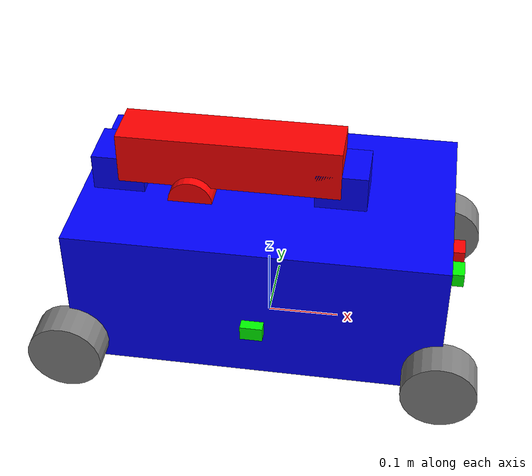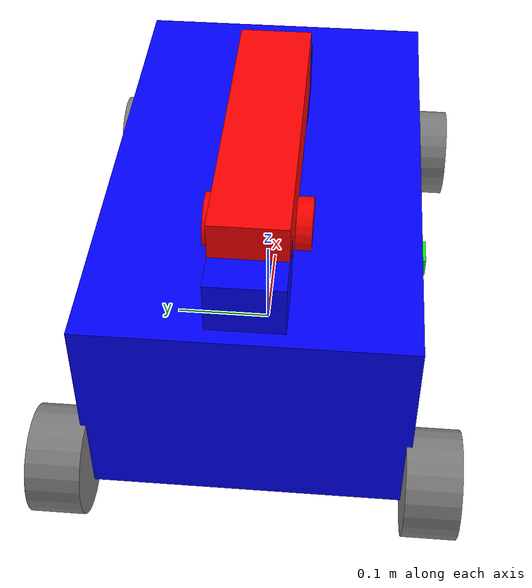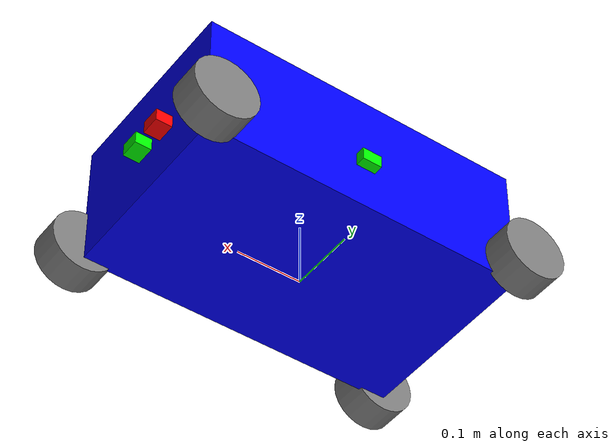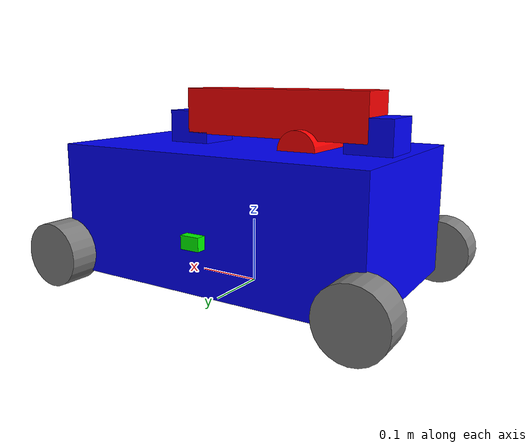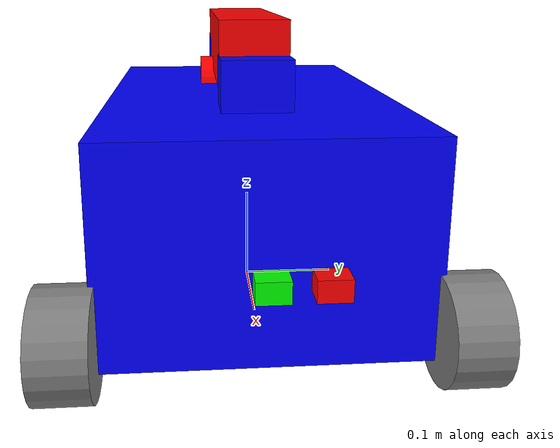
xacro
<?xml version="1.0"?>
<robot name="robot_bombero" xmlns:xacro="http://ros.org/wiki/xacro">

  <!-- Incluir el chasis -->
  <xacro:include filename="chasis.xacro"/>
  <xacro:include filename="wheels.xacro"/>
  <xacro:include filename="arm.xacro"/>
  <xacro:include filename="sensors.xacro"/>
  <xacro:robot_sensors parent="base_link"/>
  <xacro:include filename="camera.xacro"/>
  <xacro:robot_camera parent="link_wrist"/>
  <xacro:include filename="pump.xacro"/>

  <xacro:include filename="ros2_control.xacro"/>
  <xacro:robot_ros2_control/>

</robot>

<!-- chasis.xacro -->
<robot xmlns:xacro="http://www.ros.org/wiki/xacro">

  <!-- MATERIAL -->
  <material name="blue">
    <color rgba="0.0 0.0 1.0 1.0"/>
  </material>

  <!-- FOOTPRINT (Plano de referencia del suelo) -->
  <link name="base_footprint"/>

  <!-- base_link (Marco principal del robot) -->
  <link name="base_link"/>

  <joint name="base_footprint_joint" type="fixed">
    <parent link="base_footprint"/>
    <child link="base_link"/>
    <origin xyz="0 0 0" rpy="0 0 0"/>
  </joint>

  <!-- CHASIS VISUAL -->
  <link name="chassis">
    <visual>
      <geometry>
        <box size="0.5 0.3 0.2"/>
      </geometry>
      <material name="blue"/>
    </visual>
    <collision>
      <geometry>
        <box size="0.5 0.3 0.2"/>
      </geometry>
    </collision>
    <inertial>
      <mass value="1.0"/>
      <origin xyz="0 0 0.1"/>
      <inertia ixx="0.01" ixy="0.0" ixz="0.0" iyy="0.01" iyz="0.0" izz="0.01"/>
    </inertial>
  </link>

  <!-- Unión fija entre base_link y chasis -->
  <joint name="chassis_joint" type="fixed">
    <parent link="base_link"/>
    <child link="chassis"/>
    <origin xyz="0 0 0.12"/>
  </joint>

</robot>

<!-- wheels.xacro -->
<robot xmlns:xacro="http://www.ros.org/wiki/xacro" name="wheels">

  <!-- Macro para crear las ruedas mecanum -->
  <xacro:macro name="mecanum_wheel" params="name parent xyz rpy">
    <link name="${name}">
      <visual>
        <geometry>
          <cylinder radius="0.05" length="0.05"/>
        </geometry>
        <material name="grey">
          <color rgba="0.5 0.5 0.5 1.0"/>
        </material>
        <origin xyz="0 0 0" rpy="0 0 0"/>
      </visual>
      <collision>
        <geometry>
          <cylinder radius="0.05" length="0.03"/>
        </geometry>
        <origin xyz="0 0 0" rpy="0 0 0"/>
      </collision>
      <inertial>
        <mass value="0.2"/>
        <origin xyz="0 0 0" rpy="0 0 0"/>
        <inertia
          ixx="0.01" ixy="0.0" ixz="0.0"
          iyy="0.01" iyz="0.0"
          izz="0.01"/>
      </inertial>
    </link>

    <joint name="${name}_joint" type="continuous">
      <parent link="${parent}"/>
      <child link="${name}"/>
      <origin xyz="${xyz}" rpy="${rpy}"/>
      <axis xyz="0 0 1"/>
      <limit effort="100" velocity="1.0"/>
    </joint>
  </xacro:macro>

  <xacro:mecanum_wheel name="link_fl_wheel" parent="base_link" xyz="0.25 0.17 0.05" rpy="-1.5708 0 0"/>
  <xacro:mecanum_wheel name="link_fr_wheel" parent="base_link" xyz="0.25 -0.17 0.05" rpy="-1.5708 0 0"/>
  <xacro:mecanum_wheel name="link_rl_wheel" parent="base_link" xyz="-0.25 0.17 0.05" rpy="-1.5708 0 0"/>
  <xacro:mecanum_wheel name="link_rr_wheel" parent="base_link" xyz="-0.25 -0.17 0.05" rpy="-1.5708 0 0"/>

</robot>

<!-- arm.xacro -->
<robot xmlns:xacro="http://www.ros.org/wiki/xacro" name="arm">

  <!-- Propiedades para los links -->
  <xacro:property name="mass" value="0.4" /> <!-- Masa arbitraria -->
  <xacro:property name="width" value="0.07" /> <!-- Ancho de los links -->
  <xacro:property name="height_waist" value="0.05" /> <!-- Altura del link de la cintura -->
  <xacro:property name="height_shoulder" value="0.3" /> <!-- Altura del link del hombro -->
  <xacro:property name="height_elbow" value="0.2" /> <!-- Altura del link del codo -->
  <xacro:property name="height_wrist" value="0.1" /> <!-- Altura del link de la muñeca -->
  <xacro:property name="axel_offset" value="0.05" /> <!-- Desplazamiento de los ejes -->

  <material name="red">
    <color rgba="1.0 0.0 0.0 1.0"/>  <!-- Rojo -->
  </material>

  <!-- Links del brazo -->
  <link name="link_waist">
    <collision>
      <origin xyz="0 0 ${height_waist / 2}" rpy="0 0 0"/>
      <geometry>
        <box size="${width} ${width} ${height_waist}"/>
      </geometry>
    </collision>
    <visual>
      <origin xyz="0 0 ${height_waist / 2}" rpy="0 0 0"/>
      <geometry>
        <box size="${width} ${width} ${height_waist}"/>
      </geometry>
      <material name="blue"/>
    </visual>
    <inertial>
      <origin xyz="0 0 ${height_waist / 2}" rpy="0 0 0"/>
      <mass value="${mass}"/>
      <inertia ixx="${mass / 12.0 * (width*width + height_waist*height_waist)}"
               ixy="0.0" ixz="0.0"
               iyy="${mass / 12.0 * (height_waist*height_waist + width*width)}"
               iyz="0.0" izz="${mass / 12.0 * (width*width + width*width)}"/>
    </inertial>
  </link>

  <link name="link_shoulder">
    <collision>
      <origin xyz="0 0 ${height_shoulder / 2}" rpy="0 0 0"/>
      <geometry>
        <box size="${width} ${width} ${height_shoulder}"/>
      </geometry>
    </collision>
    <visual>
      <origin xyz="0 0 ${height_shoulder / 2}" rpy="0 0 0"/>
      <geometry>
        <box size="${width} ${width} ${height_shoulder}"/>
      </geometry>
      <material name="red"/>
    </visual>
    <inertial>
      <origin xyz="0 0 ${height_shoulder / 2}" rpy="0 0 0"/>
      <mass value="${mass}"/>
      <inertia ixx="${mass / 12.0 * (width*width + height_shoulder*height_shoulder)}"
               ixy="0.0" ixz="0.0"
               iyy="${mass / 12.0 * (height_shoulder*height_shoulder + width*width)}"
               iyz="0.0" izz="${mass / 12.0 * (width*width + width*width)}"/>
    </inertial>
  </link>

  <link name="link_elbow">
    <collision>
      <origin xyz="0 0 ${height_elbow / 2}" rpy="0 0 0"/>
      <geometry>
        <box size="${width} ${width} ${height_elbow}"/>
      </geometry>
    </collision>
    <visual>
      <origin xyz="0 0 ${height_elbow / 2}" rpy="0 0 0"/>
      <geometry>
        <box size="${width} ${width} ${height_elbow}"/>
      </geometry>
      <material name="blue"/>
    </visual>
    <inertial>
      <origin xyz="0 0 ${height_elbow / 2}" rpy="0 0 0"/>
      <mass value="${mass}"/>
      <inertia ixx="${mass / 12.0 * (width*width + height_elbow*height_elbow)}"
               ixy="0.0" ixz="0.0"
               iyy="${mass / 12.0 * (height_elbow*height_elbow + width*width)}"
               iyz="0.0" izz="${mass / 12.0 * (width*width + width*width)}"/>
    </inertial>
  </link>

  <link name="link_wrist">
    <collision>
      <origin xyz="0 0 ${height_wrist / 2}" rpy="0 0 0"/>
      <geometry>
        <box size="${width} ${width} ${height_wrist}"/>
      </geometry>
    </collision>
    <visual>
      <origin xyz="0 0 ${height_wrist / 2}" rpy="0 0 0"/>
      <geometry>
        <box size="${width} ${width} ${height_wrist}"/>
      </geometry>
      <material name="red"/>
    </visual>
    <inertial>
      <origin xyz="0 0 ${height_wrist / 2}" rpy="0 0 0"/>
      <mass value="${mass}"/>
      <inertia ixx="${mass / 12.0 * (width*width + height_wrist*height_wrist)}"
               ixy="0.0" ixz="0.0"
               iyy="${mass / 12.0 * (height_wrist*height_wrist + width*width)}"
               iyz="0.0" izz="${mass / 12.0 * (width*width + width*width)}"/>
    </inertial>
  </link>

  <!-- Joints del brazo -->
  <joint name="joint_waist" type="revolute">
    <parent link="chassis"/>
    <child link="link_waist"/>
    <origin xyz="0.1 0 0.1"/>
    <axis xyz="0 0 1"/>
    <limit effort="100" velocity="1.0" lower="-1.5" upper="1.5"/>
  </joint>

  <joint name="joint_shoulder" type="revolute">
    <parent link="link_waist"/>
    <child link="link_shoulder"/>
    <origin xyz="0 0 ${height_waist}" rpy="0 -1.5708 0"/>
    <axis xyz="0 1 0"/>
    <limit effort="100" velocity="1.0" lower="-1.5" upper="1.5"/>
  </joint>

  <joint name="joint_elbow" type="revolute">
    <parent link="link_shoulder"/>
    <child link="link_elbow"/>
    <origin xyz="0 0 ${height_shoulder}" rpy="0 -1.5708 0"/>
    <axis xyz="0 1 0"/>
    <limit effort="100" velocity="1.0" lower="-1.5" upper="1.5"/>
  </joint>

  <joint name="joint_wrist" type="revolute">
    <parent link="link_elbow"/>
    <child link="link_wrist"/>
    <origin xyz="0 0 ${height_elbow}" rpy="0 -1.5708 0"/>
    <axis xyz="0 1 0"/>
    <limit effort="100" velocity="1.0" lower="-1.5" upper="1.5"/>
  </joint>

</robot>

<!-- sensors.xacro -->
<robot xmlns:xacro="http://ros.org/wiki/xacro">
  <xacro:macro name="robot_sensors" params="parent">

    <xacro:property name="sensor_size" value="0.03 0.03 0.02"/>
    <xacro:property name="ir_offset" value="0.15"/>

    <material name="green">
        <color rgba="0.0 1.0 0.0 1.0"/>
    </material>

    <!-- Sensor térmico -->
    <link name="link_thermal_sensor">
      <visual>
        <geometry>
          <box size="${sensor_size}"/>
        </geometry>
        <material name="red">
          <color rgba="1.0 0.0 0.0 1.0"/>
        </material>
      </visual>
      <collision>
        <geometry>
          <box size="${sensor_size}"/>
        </geometry>
      </collision>
      <inertial>
        <mass value="0.02"/>
        <inertia ixx="0.000005" ixy="0.0" ixz="0.0" iyy="0.000005" iyz="0.0" izz="0.000005"/>
        <origin xyz="0 0 0" rpy="0 0 0"/>
      </inertial>
    </link>
    <joint name="joint_thermal_sensor" type="fixed">
      <parent link="${parent}"/>
      <child link="link_thermal_sensor"/>
      <origin xyz="0.26 0.05 0.10" rpy="0 0 0"/>
    </joint>

    <!-- Sharp Front -->
    <link name="link_sharp_front">
      <visual>
        <geometry>
          <box size="${sensor_size}"/>
        </geometry>
        <material name="green">
          <color rgba="0.0 1.0 0.0 1.0"/>
        </material>
      </visual>
      <collision>
        <geometry>
          <box size="${sensor_size}"/>
        </geometry>
      </collision>
    </link>
    <joint name="joint_sharp_front" type="fixed">
      <parent link="${parent}"/>
      <child link="link_sharp_front"/>
      <origin xyz="0.26 0 0.1" rpy="0 0 0"/>
    </joint>

    <!-- Sharp Left -->
    <link name="link_sharp_left">
      <visual>
        <geometry>
          <box size="${sensor_size}"/>
        </geometry>
        <material name="green"/>
      </visual>
      <collision>
        <geometry>
          <box size="${sensor_size}"/>
        </geometry>
      </collision>
    </link>
    <joint name="joint_sharp_left" type="fixed">
      <parent link="${parent}"/>
      <child link="link_sharp_left"/>
      <origin xyz="0 ${ir_offset} 0.1" rpy="0 0 0"/>
    </joint>

    <!-- Sharp Right -->
    <link name="link_sharp_right">
      <visual>
        <geometry>
          <box size="${sensor_size}"/>
        </geometry>
        <material name="green"/>
      </visual>
      <collision>
        <geometry>
          <box size="${sensor_size}"/>
        </geometry>
      </collision>
    </link>
    <joint name="joint_sharp_right" type="fixed">
      <parent link="${parent}"/>
      <child link="link_sharp_right"/>
      <origin xyz="0 -${ir_offset} 0.1" rpy="0 0 0"/>
    </joint>

    <!-- IMU -->
    <link name="link_imu">
      <visual>
        <geometry>
          <box size="0.025 0.025 0.015"/>
        </geometry>
        <material name="blue">
          <color rgba="0.0 0.0 1.0 1.0"/>
        </material>
      </visual>
      <collision>
        <geometry>
          <box size="0.025 0.025 0.015"/>
        </geometry>
      </collision>
    </link>
    <joint name="joint_imu" type="fixed">
      <parent link="${parent}"/>
      <child link="link_imu"/>
      <origin xyz="0 0 0.1" rpy="0 0 0"/>
    </joint>

  </xacro:macro>
</robot>

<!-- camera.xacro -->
<robot xmlns:xacro="http://ros.org/wiki/xacro">
  <xacro:macro name="robot_camera" params="parent">

    <link name="link_camera">
      <visual>
        <geometry>
          <box size="0.04 0.04 0.02"/>
        </geometry>
        <material name="dark_gray">
          <color rgba="0.2 0.2 0.2 1.0"/>
        </material>
      </visual>
      <collision>
        <geometry>
          <box size="0.04 0.04 0.02"/>
        </geometry>
      </collision>
      <inertial>
        <mass value="0.05"/>
        <inertia ixx="0.00001" ixy="0.0" ixz="0.0" iyy="0.00001" iyz="0.0" izz="0.00001"/>
        <origin xyz="0 0 0" rpy="0 0 0"/>
      </inertial>
    </link>

    <joint name="joint_camera" type="fixed">
      <parent link="${parent}"/>
      <child link="link_camera"/>
      <origin xyz="0 0 0.1" rpy="0 0 0"/>
    </joint>

  </xacro:macro>
</robot>

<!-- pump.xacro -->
<robot xmlns:xacro="http://www.ros.org/wiki/xacro" name="wheels">
<link name="water_pump_link">
  <visual>
    <geometry>
      <cylinder radius="0.03" length="0.1"/>
    </geometry>
    <material name="red">
    <color rgba="1.0 0.0 0.0 1.0"/>
  </material>
  </visual>
</link>
<joint name="joint_water_pump" type="continuous">
  <parent link="chassis"/>
  <child link="water_pump_link"/>
  <origin xyz="-0.1 0 0.1" rpy="0 1.57 1.57"/>
  <limit effort="100" velocity="1.0"/>
</joint>
</robot>
